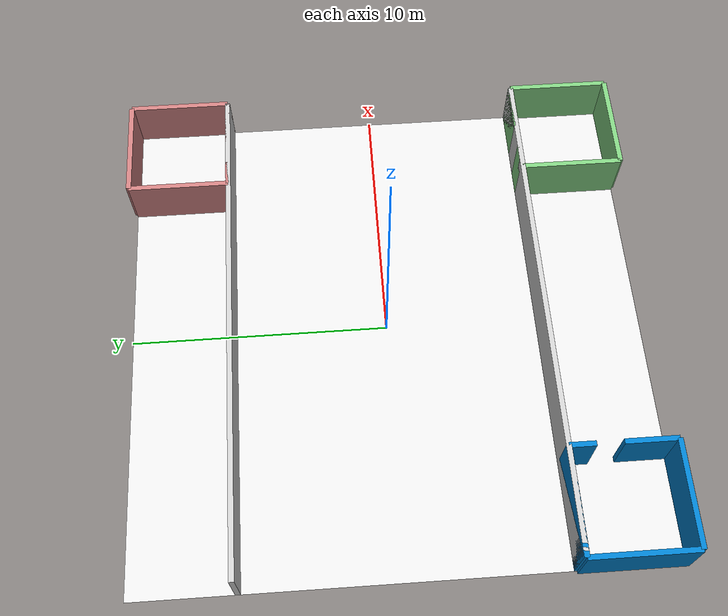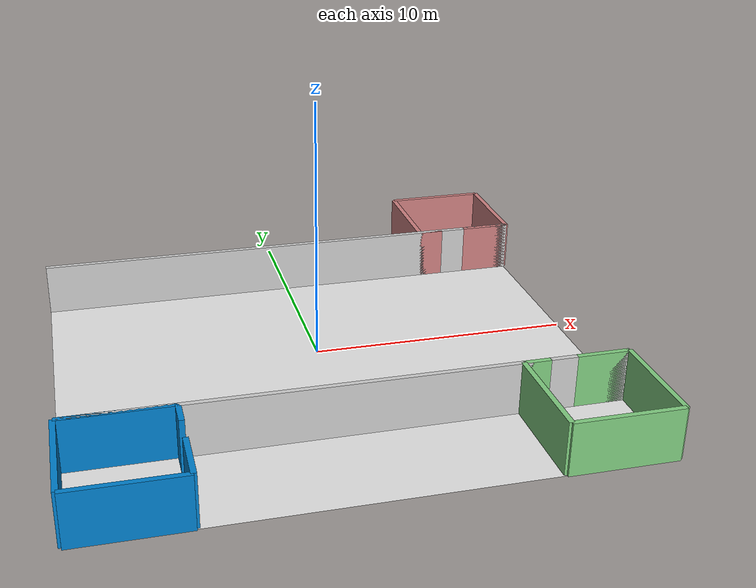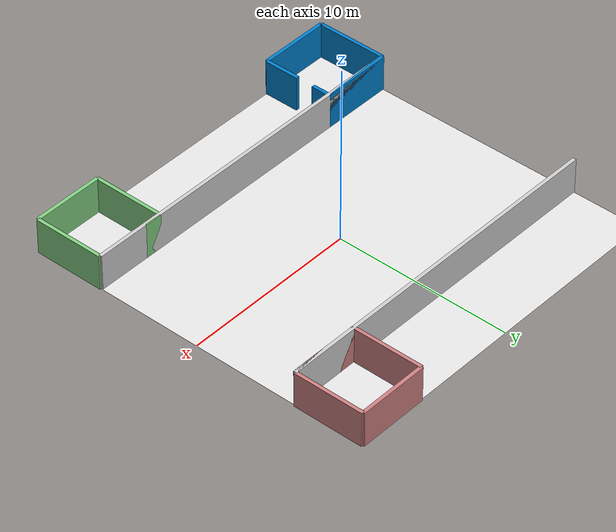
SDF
<?xml version="1.0" ?>
<sdf version="1.6">
  <world name="hospital">

    <!-- Physics -->
    <physics type="ode">
      <real_time_update_rate>1000.0</real_time_update_rate>
      <max_step_size>0.001</max_step_size>
      <real_time_factor>1</real_time_factor>
    </physics>

    <!-- A global light source -->
    <include>
      <uri>model://sun</uri>
    </include>

    <!-- Ground Plane -->
    <include>
      <uri>model://ground_plane</uri>
    </include>

    <!-- Hospital Building Structure -->
    <!-- Floor -->
    <model name="hospital_floor">
      <static>true</static>
      <link name="floor">
        <collision name="collision">
          <geometry>
            <plane>
              <normal>0 0 1</normal>
              <size>20 20</size>
            </plane>
          </geometry>
          <surface>
            <friction>
              <ode>
                <mu>100</mu>
                <mu2>50</mu2>
              </ode>
            </friction>
          </surface>
        </collision>
        <visual name="visual">
          <cast_shadows>false</cast_shadows>
          <geometry>
            <plane>
              <normal>0 0 1</normal>
              <size>20 20</size>
            </plane>
          </geometry>
          <material>
            <ambient>0.9 0.9 0.9 1</ambient>
            <diffuse>0.9 0.9 0.9 1</diffuse>
            <specular>0.01 0.01 0.01 1</specular>
          </material>
        </visual>
      </link>
    </model>

    <!-- Pharmacy - Starting point -->
    <model name="pharmacy">
      <static>true</static>
      <pose>-8 -8 0 0 0 0</pose>
      <link name="pharmacy_walls">
        <!-- Front wall -->
        <collision name="front_wall">
          <pose>0 2 1 0 0 0</pose>
          <geometry>
            <box>
              <size>4 0.2 2</size>
            </box>
          </geometry>
        </collision>
        <visual name="front_wall_visual">
          <pose>0 2 1 0 0 0</pose>
          <geometry>
            <box>
              <size>4 0.2 2</size>
            </box>
          </geometry>
          <material>
            <ambient>0.0 0.5 0.8 1</ambient>
            <diffuse>0.0 0.5 0.8 1</diffuse>
          </material>
        </visual>

        <!-- Back wall -->
        <collision name="back_wall">
          <pose>0 -2 1 0 0 0</pose>
          <geometry>
            <box>
              <size>4 0.2 2</size>
            </box>
          </geometry>
        </collision>
        <visual name="back_wall_visual">
          <pose>0 -2 1 0 0 0</pose>
          <geometry>
            <box>
              <size>4 0.2 2</size>
            </box>
          </geometry>
          <material>
            <ambient>0.0 0.5 0.8 1</ambient>
            <diffuse>0.0 0.5 0.8 1</diffuse>
          </material>
        </visual>

        <!-- Left wall -->
        <collision name="left_wall">
          <pose>-2 0 1 0 0 0</pose>
          <geometry>
            <box>
              <size>0.2 4 2</size>
            </box>
          </geometry>
        </collision>
        <visual name="left_wall_visual">
          <pose>-2 0 1 0 0 0</pose>
          <geometry>
            <box>
              <size>0.2 4 2</size>
            </box>
          </geometry>
          <material>
            <ambient>0.0 0.5 0.8 1</ambient>
            <diffuse>0.0 0.5 0.8 1</diffuse>
          </material>
        </visual>

        <!-- Right wall with door opening -->
        <collision name="right_wall_1">
          <pose>2 -1 1 0 0 0</pose>
          <geometry>
            <box>
              <size>0.2 2 2</size>
            </box>
          </geometry>
        </collision>
        <visual name="right_wall_1_visual">
          <pose>2 -1 1 0 0 0</pose>
          <geometry>
            <box>
              <size>0.2 2 2</size>
            </box>
          </geometry>
          <material>
            <ambient>0.0 0.5 0.8 1</ambient>
            <diffuse>0.0 0.5 0.8 1</diffuse>
          </material>
        </visual>

        <collision name="right_wall_2">
          <pose>2 1.5 1 0 0 0</pose>
          <geometry>
            <box>
              <size>0.2 1 2</size>
            </box>
          </geometry>
        </collision>
        <visual name="right_wall_2_visual">
          <pose>2 1.5 1 0 0 0</pose>
          <geometry>
            <box>
              <size>0.2 1 2</size>
            </box>
          </geometry>
          <material>
            <ambient>0.0 0.5 0.8 1</ambient>
            <diffuse>0.0 0.5 0.8 1</diffuse>
          </material>
        </visual>
      </link>
    </model>

    <!-- Corridor walls -->
    <model name="corridor">
      <static>true</static>
      <pose>0 0 0 0 0 0</pose>
      <link name="corridor_walls">
        <!-- Top corridor wall -->
        <collision name="top_wall">
          <pose>0 -6 1 0 0 0</pose>
          <geometry>
            <box>
              <size>20 0.2 2</size>
            </box>
          </geometry>
        </collision>
        <visual name="top_wall_visual">
          <pose>0 -6 1 0 0 0</pose>
          <geometry>
            <box>
              <size>20 0.2 2</size>
            </box>
          </geometry>
          <material>
            <ambient>0.8 0.8 0.8 1</ambient>
            <diffuse>0.8 0.8 0.8 1</diffuse>
          </material>
        </visual>

        <!-- Bottom corridor wall -->
        <collision name="bottom_wall">
          <pose>0 6 1 0 0 0</pose>
          <geometry>
            <box>
              <size>20 0.2 2</size>
            </box>
          </geometry>
        </collision>
        <visual name="bottom_wall_visual">
          <pose>0 6 1 0 0 0</pose>
          <geometry>
            <box>
              <size>20 0.2 2</size>
            </box>
          </geometry>
          <material>
            <ambient>0.8 0.8 0.8 1</ambient>
            <diffuse>0.8 0.8 0.8 1</diffuse>
          </material>
        </visual>
      </link>
    </model>

    <!-- Patient Room 1 -->
    <model name="patient_room_1">
      <static>true</static>
      <pose>8 -8 0 0 0 0</pose>
      <link name="room_walls">
        <!-- Front wall with door -->
        <collision name="front_wall_1">
          <pose>-1.5 2 1 0 0 0</pose>
          <geometry>
            <box>
              <size>1 0.2 2</size>
            </box>
          </geometry>
        </collision>
        <visual name="front_wall_1_visual">
          <pose>-1.5 2 1 0 0 0</pose>
          <geometry>
            <box>
              <size>1 0.2 2</size>
            </box>
          </geometry>
          <material>
            <ambient>0.5 0.8 0.5 1</ambient>
            <diffuse>0.5 0.8 0.5 1</diffuse>
          </material>
        </visual>

        <collision name="front_wall_2">
          <pose>1 2 1 0 0 0</pose>
          <geometry>
            <box>
              <size>2 0.2 2</size>
            </box>
          </geometry>
        </collision>
        <visual name="front_wall_2_visual">
          <pose>1 2 1 0 0 0</pose>
          <geometry>
            <box>
              <size>2 0.2 2</size>
            </box>
          </geometry>
          <material>
            <ambient>0.5 0.8 0.5 1</ambient>
            <diffuse>0.5 0.8 0.5 1</diffuse>
          </material>
        </visual>

        <!-- Back wall -->
        <collision name="back_wall">
          <pose>0 -2 1 0 0 0</pose>
          <geometry>
            <box>
              <size>4 0.2 2</size>
            </box>
          </geometry>
        </collision>
        <visual name="back_wall_visual">
          <pose>0 -2 1 0 0 0</pose>
          <geometry>
            <box>
              <size>4 0.2 2</size>
            </box>
          </geometry>
          <material>
            <ambient>0.5 0.8 0.5 1</ambient>
            <diffuse>0.5 0.8 0.5 1</diffuse>
          </material>
        </visual>

        <!-- Left wall -->
        <collision name="left_wall">
          <pose>-2 0 1 0 0 0</pose>
          <geometry>
            <box>
              <size>0.2 4 2</size>
            </box>
          </geometry>
        </collision>
        <visual name="left_wall_visual">
          <pose>-2 0 1 0 0 0</pose>
          <geometry>
            <box>
              <size>0.2 4 2</size>
            </box>
          </geometry>
          <material>
            <ambient>0.5 0.8 0.5 1</ambient>
            <diffuse>0.5 0.8 0.5 1</diffuse>
          </material>
        </visual>

        <!-- Right wall -->
        <collision name="right_wall">
          <pose>2 0 1 0 0 0</pose>
          <geometry>
            <box>
              <size>0.2 4 2</size>
            </box>
          </geometry>
        </collision>
        <visual name="right_wall_visual">
          <pose>2 0 1 0 0 0</pose>
          <geometry>
            <box>
              <size>0.2 4 2</size>
            </box>
          </geometry>
          <material>
            <ambient>0.5 0.8 0.5 1</ambient>
            <diffuse>0.5 0.8 0.5 1</diffuse>
          </material>
        </visual>
      </link>
    </model>

    <!-- Patient Room 2 -->
    <model name="patient_room_2">
      <static>true</static>
      <pose>8 8 0 0 0 0</pose>
      <link name="room_walls">
        <!-- Back wall with door -->
        <collision name="back_wall_1">
          <pose>-1.5 -2 1 0 0 0</pose>
          <geometry>
            <box>
              <size>1 0.2 2</size>
            </box>
          </geometry>
        </collision>
        <visual name="back_wall_1_visual">
          <pose>-1.5 -2 1 0 0 0</pose>
          <geometry>
            <box>
              <size>1 0.2 2</size>
            </box>
          </geometry>
          <material>
            <ambient>0.8 0.5 0.5 1</ambient>
            <diffuse>0.8 0.5 0.5 1</diffuse>
          </material>
        </visual>

        <collision name="back_wall_2">
          <pose>1 -2 1 0 0 0</pose>
          <geometry>
            <box>
              <size>2 0.2 2</size>
            </box>
          </geometry>
        </collision>
        <visual name="back_wall_2_visual">
          <pose>1 -2 1 0 0 0</pose>
          <geometry>
            <box>
              <size>2 0.2 2</size>
            </box>
          </geometry>
          <material>
            <ambient>0.8 0.5 0.5 1</ambient>
            <diffuse>0.8 0.5 0.5 1</diffuse>
          </material>
        </visual>

        <!-- Front wall -->
        <collision name="front_wall">
          <pose>0 2 1 0 0 0</pose>
          <geometry>
            <box>
              <size>4 0.2 2</size>
            </box>
          </geometry>
        </collision>
        <visual name="front_wall_visual">
          <pose>0 2 1 0 0 0</pose>
          <geometry>
            <box>
              <size>4 0.2 2</size>
            </box>
          </geometry>
          <material>
            <ambient>0.8 0.5 0.5 1</ambient>
            <diffuse>0.8 0.5 0.5 1</diffuse>
          </material>
        </visual>

        <!-- Left wall -->
        <collision name="left_wall">
          <pose>-2 0 1 0 0 0</pose>
          <geometry>
            <box>
              <size>0.2 4 2</size>
            </box>
          </geometry>
        </collision>
        <visual name="left_wall_visual">
          <pose>-2 0 1 0 0 0</pose>
          <geometry>
            <box>
              <size>0.2 4 2</size>
            </box>
          </geometry>
          <material>
            <ambient>0.8 0.5 0.5 1</ambient>
            <diffuse>0.8 0.5 0.5 1</diffuse>
          </material>
        </visual>

        <!-- Right wall -->
        <collision name="right_wall">
          <pose>2 0 1 0 0 0</pose>
          <geometry>
            <box>
              <size>0.2 4 2</size>
            </box>
          </geometry>
        </collision>
        <visual name="right_wall_visual">
          <pose>2 0 1 0 0 0</pose>
          <geometry>
            <box>
              <size>0.2 4 2</size>
            </box>
          </geometry>
          <material>
            <ambient>0.8 0.5 0.5 1</ambient>
            <diffuse>0.8 0.5 0.5 1</diffuse>
          </material>
        </visual>
      </link>
    </model>

    <!-- Scene lighting -->
    <light name='hospital_light_1' type='point'>
      <pose>-5 0 3 0 0 0</pose>
      <diffuse>0.7 0.7 0.7 1</diffuse>
      <specular>0.2 0.2 0.2 1</specular>
      <attenuation>
        <range>20</range>
        <constant>0.5</constant>
        <linear>0.01</linear>
        <quadratic>0.001</quadratic>
      </attenuation>
      <cast_shadows>1</cast_shadows>
    </light>

    <light name='hospital_light_2' type='point'>
      <pose>5 0 3 0 0 0</pose>
      <diffuse>0.7 0.7 0.7 1</diffuse>
      <specular>0.2 0.2 0.2 1</specular>
      <attenuation>
        <range>20</range>
        <constant>0.5</constant>
        <linear>0.01</linear>
        <quadratic>0.001</quadratic>
      </attenuation>
      <cast_shadows>1</cast_shadows>
    </light>

    <!-- Camera view -->
    <gui fullscreen='0'>
      <camera name='user_camera'>
        <pose>0 -15 10 0 0.5 1.57</pose>
        <view_controller>orbit</view_controller>
      </camera>
    </gui>

  </world>
</sdf>
